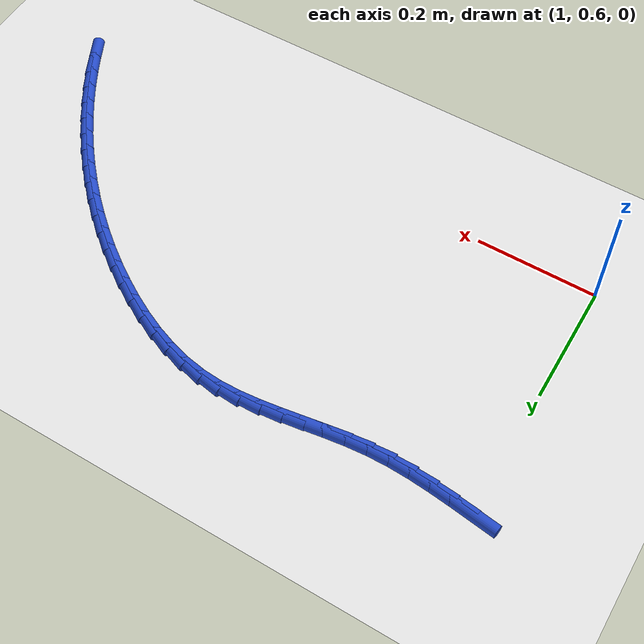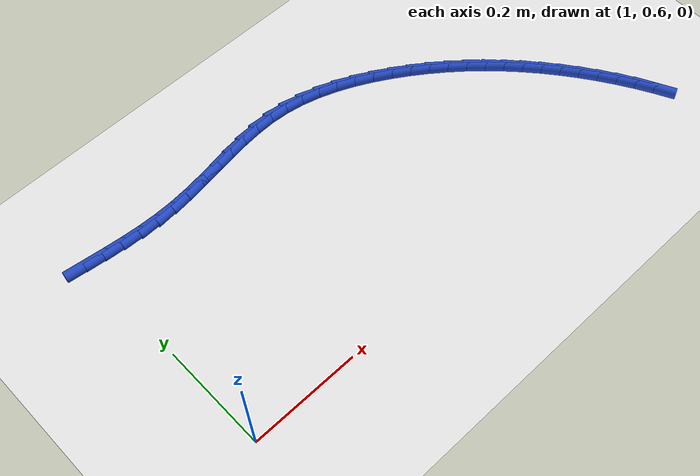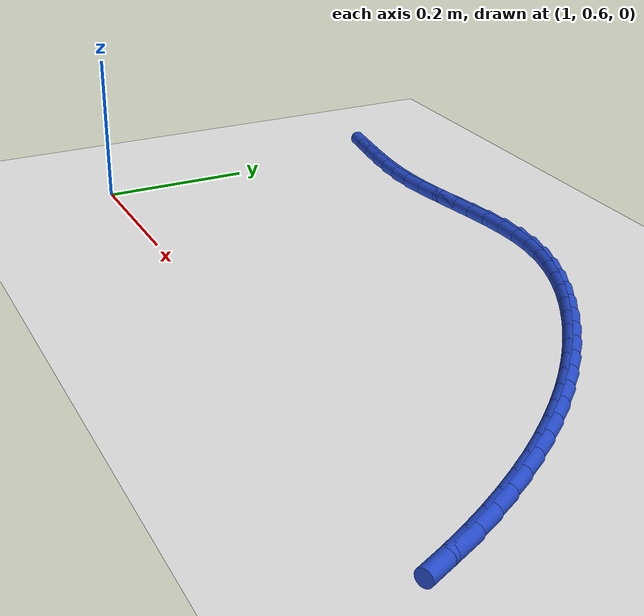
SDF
<sdf version="1.6">
 <world name="default">
  <model name="ground_plane">
   <static>1</static>
   <link name="link">
    <collision name="collision">
     <geometry><plane><normal>0 0 1</normal><size>100 100</size></plane></geometry>
     <surface><friction><ode><mu>100</mu><mu2>50</mu2></ode></friction></surface>
    </collision>
    <visual name="visual">
     <cast_shadows>0</cast_shadows>
     <geometry><plane><normal>0 0 1</normal><size>100 100</size></plane></geometry>
     <material>
      <script><uri>file://media/materials/scripts/gazebo.material</uri><name>Gazebo/WhiteGlow</name></script>
     </material>
    </visual>
   </link>
  </model>
  <model name="line">
   <link name="link_48">
    <pose>0.997344212812623 1.017504836255232 0.01 0 1.57 -0.13120372640908792</pose>
    <collision name="collision">
     <geometry><cylinder><radius>0.01</radius><length>0.08</length></cylinder></geometry>
    </collision>
    <visual name="visual">
     <material>
      <script><name>Gazebo/Blue</name><uri>file://media/materials/scripts/gazebo.material</uri></script>
     </material>
     <geometry><cylinder><radius>0.01</radius><length>0.08</length></cylinder></geometry>
    </visual>
   </link>
   <link name="link_49">
    <pose>1.031423012908123 1.0130077360406309 0.01 0 1.57 -0.11436461070944176</pose>
    <collision name="collision">
     <geometry><cylinder><radius>0.01</radius><length>0.08</length></cylinder></geometry>
    </collision>
    <visual name="visual">
     <material>
      <script><name>Gazebo/Blue</name><uri>file://media/materials/scripts/gazebo.material</uri></script>
     </material>
     <geometry><cylinder><radius>0.01</radius><length>0.08</length></cylinder></geometry>
    </visual>
   </link>
   <link name="link_50">
    <pose>1.0655704630859228 1.009085360670285 0.01 0 1.57 -0.08363959659428066</pose>
    <collision name="collision">
     <geometry><cylinder><radius>0.01</radius><length>0.08</length></cylinder></geometry>
    </collision>
    <visual name="visual">
     <material>
      <script><name>Gazebo/Blue</name><uri>file://media/materials/scripts/gazebo.material</uri></script>
     </material>
     <geometry><cylinder><radius>0.01</radius><length>0.08</length></cylinder></geometry>
    </visual>
   </link>
   <link name="link_51">
    <pose>1.0997574343150065 1.0062192897908666 0.01 0 1.57 -0.0388193527741868</pose>
    <collision name="collision">
     <geometry><cylinder><radius>0.01</radius><length>0.08</length></cylinder></geometry>
    </collision>
    <visual name="visual">
     <material>
      <script><name>Gazebo/Blue</name><uri>file://media/materials/scripts/gazebo.material</uri></script>
     </material>
     <geometry><cylinder><radius>0.01</radius><length>0.08</length></cylinder></geometry>
    </visual>
   </link>
   <link name="link_52">
    <pose>1.1339547975643576 1.0048911030490466 0.01 0 1.57 0.020213358716206664</pose>
    <collision name="collision">
     <geometry><cylinder><radius>0.01</radius><length>0.08</length></cylinder></geometry>
    </collision>
    <visual name="visual">
     <material>
      <script><name>Gazebo/Blue</name><uri>file://media/materials/scripts/gazebo.material</uri></script>
     </material>
     <geometry><cylinder><radius>0.01</radius><length>0.08</length></cylinder></geometry>
    </visual>
   </link>
   <link name="link_53">
    <pose>1.1681334258048288 1.0055820620286393 0.01 0 1.57 0.08481698721427056</pose>
    <collision name="collision">
     <geometry><cylinder><radius>0.01</radius><length>0.08</length></cylinder></geometry>
    </collision>
    <visual name="visual">
     <material>
      <script><name>Gazebo/Blue</name><uri>file://media/materials/scripts/gazebo.material</uri></script>
     </material>
     <geometry><cylinder><radius>0.01</radius><length>0.08</length></cylinder></geometry>
    </visual>
   </link>
   <link name="link_54">
    <pose>1.202266013352895 1.0084840474950658 0.01 0 1.57 0.13081095137444468</pose>
    <collision name="collision">
     <geometry><cylinder><radius>0.01</radius><length>0.08</length></cylinder></geometry>
    </collision>
    <visual name="visual">
     <material>
      <script><name>Gazebo/Blue</name><uri>file://media/materials/scripts/gazebo.material</uri></script>
     </material>
     <geometry><cylinder><radius>0.01</radius><length>0.08</length></cylinder></geometry>
    </visual>
   </link>
   <link name="link_55">
    <pose>1.2363304363367107 1.0129656385376251 0.01 0 1.57 0.15429955857101207</pose>
    <collision name="collision">
     <geometry><cylinder><radius>0.01</radius><length>0.08</length></cylinder></geometry>
    </collision>
    <visual name="visual">
     <material>
      <script><name>Gazebo/Blue</name><uri>file://media/materials/scripts/gazebo.material</uri></script>
     </material>
     <geometry><cylinder><radius>0.01</radius><length>0.08</length></cylinder></geometry>
    </visual>
   </link>
   <link name="link_56">
    <pose>1.2703054862540362 1.018249977595118 0.01 0 1.57 0.15554168414504255</pose>
    <collision name="collision">
     <geometry><cylinder><radius>0.01</radius><length>0.08</length></cylinder></geometry>
    </collision>
    <visual name="visual">
     <material>
      <script><name>Gazebo/Blue</name><uri>file://media/materials/scripts/gazebo.material</uri></script>
     </material>
     <geometry><cylinder><radius>0.01</radius><length>0.08</length></cylinder></geometry>
    </visual>
   </link>
   <link name="link_57">
    <pose>1.3041699546026353 1.0235602071063477 0.01 0 1.57 0.1343445101931664</pose>
    <collision name="collision">
     <geometry><cylinder><radius>0.01</radius><length>0.08</length></cylinder></geometry>
    </collision>
    <visual name="visual">
     <material>
      <script><name>Gazebo/Blue</name><uri>file://media/materials/scripts/gazebo.material</uri></script>
     </material>
     <geometry><cylinder><radius>0.01</radius><length>0.08</length></cylinder></geometry>
    </visual>
   </link>
   <link name="link_58">
    <pose>1.3379026328802706 1.0281194695101155 0.01 0 1.57 0.09003190756228516</pose>
    <collision name="collision">
     <geometry><cylinder><radius>0.01</radius><length>0.08</length></cylinder></geometry>
    </collision>
    <visual name="visual">
     <material>
      <script><name>Gazebo/Blue</name><uri>file://media/materials/scripts/gazebo.material</uri></script>
     </material>
     <geometry><cylinder><radius>0.01</radius><length>0.08</length></cylinder></geometry>
    </visual>
   </link>
   <link name="link_59">
    <pose>1.3714823125847047 1.031150907245224 0.01 0 1.57 0.02175215081615469</pose>
    <collision name="collision">
     <geometry><cylinder><radius>0.01</radius><length>0.08</length></cylinder></geometry>
    </collision>
    <visual name="visual">
     <material>
      <script><name>Gazebo/Blue</name><uri>file://media/materials/scripts/gazebo.material</uri></script>
     </material>
     <geometry><cylinder><radius>0.01</radius><length>0.08</length></cylinder></geometry>
    </visual>
   </link>
   <link name="link_60">
    <pose>1.4048877852137003 1.0318776627504758 0.01 0 1.57 -0.0706780919763702</pose>
    <collision name="collision">
     <geometry><cylinder><radius>0.01</radius><length>0.08</length></cylinder></geometry>
    </collision>
    <visual name="visual">
     <material>
      <script><name>Gazebo/Blue</name><uri>file://media/materials/scripts/gazebo.material</uri></script>
     </material>
     <geometry><cylinder><radius>0.01</radius><length>0.08</length></cylinder></geometry>
    </visual>
   </link>
   <link name="link_61">
    <pose>1.438097530410926 1.0295265451018887 0.01 0 1.57 -0.1748310320683953</pose>
    <collision name="collision">
     <geometry><cylinder><radius>0.01</radius><length>0.08</length></cylinder></geometry>
    </collision>
    <visual name="visual">
     <material>
      <script><name>Gazebo/Blue</name><uri>file://media/materials/scripts/gazebo.material</uri></script>
     </material>
     <geometry><cylinder><radius>0.01</radius><length>0.08</length></cylinder></geometry>
    </visual>
   </link>
   <link name="link_62">
    <pose>1.4710576838354428 1.0237046490926218 0.01 0 1.57 -0.26878809851710617</pose>
    <collision name="collision">
     <geometry><cylinder><radius>0.01</radius><length>0.08</length></cylinder></geometry>
    </collision>
    <visual name="visual">
     <material>
      <script><name>Gazebo/Blue</name><uri>file://media/materials/scripts/gazebo.material</uri></script>
     </material>
     <geometry><cylinder><radius>0.01</radius><length>0.08</length></cylinder></geometry>
    </visual>
   </link>
   <link name="link_63">
    <pose>1.5036542730209062 1.0147257932498852 0.01 0 1.57 -0.35063442356578867</pose>
    <collision name="collision">
     <geometry><cylinder><radius>0.01</radius><length>0.08</length></cylinder></geometry>
    </collision>
    <visual name="visual">
     <material>
      <script><name>Gazebo/Blue</name><uri>file://media/materials/scripts/gazebo.material</uri></script>
     </material>
     <geometry><cylinder><radius>0.01</radius><length>0.08</length></cylinder></geometry>
    </visual>
   </link>
   <link name="link_64">
    <pose>1.5357667830568489 1.0029807191542888 0.01 0 1.57 -0.4213217533757041</pose>
    <collision name="collision">
     <geometry><cylinder><radius>0.01</radius><length>0.08</length></cylinder></geometry>
    </collision>
    <visual name="visual">
     <material>
      <script><name>Gazebo/Blue</name><uri>file://media/materials/scripts/gazebo.material</uri></script>
     </material>
     <geometry><cylinder><radius>0.01</radius><length>0.08</length></cylinder></geometry>
    </visual>
   </link>
   <link name="link_65">
    <pose>1.5672746990328021 0.9888601683864421 0.01 0 1.57 -0.48202777366266325</pose>
    <collision name="collision">
     <geometry><cylinder><radius>0.01</radius><length>0.08</length></cylinder></geometry>
    </collision>
    <visual name="visual">
     <material>
      <script><name>Gazebo/Blue</name><uri>file://media/materials/scripts/gazebo.material</uri></script>
     </material>
     <geometry><cylinder><radius>0.01</radius><length>0.08</length></cylinder></geometry>
    </visual>
   </link>
   <link name="link_66">
    <pose>1.5980575060382998 0.9727548825269556 0.01 0 1.57 -0.5339340986630283</pose>
    <collision name="collision">
     <geometry><cylinder><radius>0.01</radius><length>0.08</length></cylinder></geometry>
    </collision>
    <visual name="visual">
     <material>
      <script><name>Gazebo/Blue</name><uri>file://media/materials/scripts/gazebo.material</uri></script>
     </material>
     <geometry><cylinder><radius>0.01</radius><length>0.08</length></cylinder></geometry>
    </visual>
   </link>
   <link name="link_67">
    <pose>1.6279946891628727 0.955055603156439 0.01 0 1.57 -0.5788261377598799</pose>
    <collision name="collision">
     <geometry><cylinder><radius>0.01</radius><length>0.08</length></cylinder></geometry>
    </collision>
    <visual name="visual">
     <material>
      <script><name>Gazebo/Blue</name><uri>file://media/materials/scripts/gazebo.material</uri></script>
     </material>
     <geometry><cylinder><radius>0.01</radius><length>0.08</length></cylinder></geometry>
    </visual>
   </link>
   <link name="link_68">
    <pose>1.656979142903108 0.9361144945198969 0.01 0 1.57 -0.6215607652828136</pose>
    <collision name="collision">
     <geometry><cylinder><radius>0.01</radius><length>0.08</length></cylinder></geometry>
    </collision>
    <visual name="visual">
     <material>
      <script><name>Gazebo/Blue</name><uri>file://media/materials/scripts/gazebo.material</uri></script>
     </material>
     <geometry><cylinder><radius>0.01</radius><length>0.08</length></cylinder></geometry>
    </visual>
   </link>
   <link name="link_69">
    <pose>1.6849827824959516 0.9160563871996104 0.01 0 1.57 -0.6636873785567908</pose>
    <collision name="collision">
     <geometry><cylinder><radius>0.01</radius><length>0.08</length></cylinder></geometry>
    </collision>
    <visual name="visual">
     <material>
      <script><name>Gazebo/Blue</name><uri>file://media/materials/scripts/gazebo.material</uri></script>
     </material>
     <geometry><cylinder><radius>0.01</radius><length>0.08</length></cylinder></geometry>
    </visual>
   </link>
   <link name="link_70">
    <pose>1.7120063702527462 0.8949231220329945 0.01 0 1.57 -0.7051404682241248</pose>
    <collision name="collision">
     <geometry><cylinder><radius>0.01</radius><length>0.08</length></cylinder></geometry>
    </collision>
    <visual name="visual">
     <material>
      <script><name>Gazebo/Blue</name><uri>file://media/materials/scripts/gazebo.material</uri></script>
     </material>
     <geometry><cylinder><radius>0.01</radius><length>0.08</length></cylinder></geometry>
    </visual>
   </link>
   <link name="link_71">
    <pose>1.7380507108355725 0.8727564180192129 0.01 0 1.57 -0.7458645775239934</pose>
    <collision name="collision">
     <geometry><cylinder><radius>0.01</radius><length>0.08</length></cylinder></geometry>
    </collision>
    <visual name="visual">
     <material>
      <script><name>Gazebo/Blue</name><uri>file://media/materials/scripts/gazebo.material</uri></script>
     </material>
     <geometry><cylinder><radius>0.01</radius><length>0.08</length></cylinder></geometry>
    </visual>
   </link>
   <link name="link_72">
    <pose>1.7631166089065142 0.8495979941574295 0.01 0 1.57 -0.7858165425522354</pose>
    <collision name="collision">
     <geometry><cylinder><radius>0.01</radius><length>0.08</length></cylinder></geometry>
    </collision>
    <visual name="visual">
     <material>
      <script><name>Gazebo/Blue</name><uri>file://media/materials/scripts/gazebo.material</uri></script>
     </material>
     <geometry><cylinder><radius>0.01</radius><length>0.08</length></cylinder></geometry>
    </visual>
   </link>
   <link name="link_73">
    <pose>1.7872048691276536 0.8254895694468083 0.01 0 1.57 -0.8249651487157852</pose>
    <collision name="collision">
     <geometry><cylinder><radius>0.01</radius><length>0.08</length></cylinder></geometry>
    </collision>
    <visual name="visual">
     <material>
      <script><name>Gazebo/Blue</name><uri>file://media/materials/scripts/gazebo.material</uri></script>
     </material>
     <geometry><cylinder><radius>0.01</radius><length>0.08</length></cylinder></geometry>
    </visual>
   </link>
   <link name="link_74">
    <pose>1.8103162961610721 0.8004728628865129 0.01 0 1.57 -0.8632905389196548</pose>
    <collision name="collision">
     <geometry><cylinder><radius>0.01</radius><length>0.08</length></cylinder></geometry>
    </collision>
    <visual name="visual">
     <material>
      <script><name>Gazebo/Blue</name><uri>file://media/materials/scripts/gazebo.material</uri></script>
     </material>
     <geometry><cylinder><radius>0.01</radius><length>0.08</length></cylinder></geometry>
    </visual>
   </link>
   <link name="link_75">
    <pose>1.8324516946688532 0.7745895934757073 0.01 0 1.57 -0.9007834355394135</pose>
    <collision name="collision">
     <geometry><cylinder><radius>0.01</radius><length>0.08</length></cylinder></geometry>
    </collision>
    <visual name="visual">
     <material>
      <script><name>Gazebo/Blue</name><uri>file://media/materials/scripts/gazebo.material</uri></script>
     </material>
     <geometry><cylinder><radius>0.01</radius><length>0.08</length></cylinder></geometry>
    </visual>
   </link>
   <link name="link_76">
    <pose>1.853611869313078 0.7478814802135553 0.01 0 1.57 -0.9374442364813387</pose>
    <collision name="collision">
     <geometry><cylinder><radius>0.01</radius><length>0.08</length></cylinder></geometry>
    </collision>
    <visual name="visual">
     <material>
      <script><name>Gazebo/Blue</name><uri>file://media/materials/scripts/gazebo.material</uri></script>
     </material>
     <geometry><cylinder><radius>0.01</radius><length>0.08</length></cylinder></geometry>
    </visual>
   </link>
   <link name="link_77">
    <pose>1.8737976247558294 0.7203902420992208 0.01 0 1.57 -0.9732820403305039</pose>
    <collision name="collision">
     <geometry><cylinder><radius>0.01</radius><length>0.08</length></cylinder></geometry>
    </collision>
    <visual name="visual">
     <material>
      <script><name>Gazebo/Blue</name><uri>file://media/materials/scripts/gazebo.material</uri></script>
     </material>
     <geometry><cylinder><radius>0.01</radius><length>0.08</length></cylinder></geometry>
    </visual>
   </link>
   <link name="link_78">
    <pose>1.8930097656591895 0.6921575981318676 0.01 0 1.57 -1.0083814099799056</pose>
    <collision name="collision">
     <geometry><cylinder><radius>0.01</radius><length>0.08</length></cylinder></geometry>
    </collision>
    <visual name="visual">
     <material>
      <script><name>Gazebo/Blue</name><uri>file://media/materials/scripts/gazebo.material</uri></script>
     </material>
     <geometry><cylinder><radius>0.01</radius><length>0.08</length></cylinder></geometry>
    </visual>
   </link>
   <link name="link_79">
    <pose>1.9112463302777145 0.6632253099301828 0.01 0 1.57 -1.043470364892043</pose>
    <collision name="collision">
     <geometry><cylinder><radius>0.01</radius><length>0.08</length></cylinder></geometry>
    </collision>
    <visual name="visual">
     <material>
      <script><name>Gazebo/Blue</name><uri>file://media/materials/scripts/gazebo.material</uri></script>
     </material>
     <geometry><cylinder><radius>0.01</radius><length>0.08</length></cylinder></geometry>
    </visual>
   </link>
   <link name="link_80">
    <pose>1.928477340594474 0.6336355707340497 0.01 0 1.57 -1.079036549144892</pose>
    <collision name="collision">
     <geometry><cylinder><radius>0.01</radius><length>0.08</length></cylinder></geometry>
    </collision>
    <visual name="visual">
     <material>
      <script><name>Gazebo/Blue</name><uri>file://media/materials/scripts/gazebo.material</uri></script>
     </material>
     <geometry><cylinder><radius>0.01</radius><length>0.08</length></cylinder></geometry>
    </visual>
   </link>
   <link name="link_81">
    <pose>1.9446565343420408 0.6034308246599797 0.01 0 1.57 -1.1151797856887617</pose>
    <collision name="collision">
     <geometry><cylinder><radius>0.01</radius><length>0.08</length></cylinder></geometry>
    </collision>
    <visual name="visual">
     <material>
      <script><name>Gazebo/Blue</name><uri>file://media/materials/scripts/gazebo.material</uri></script>
     </material>
     <geometry><cylinder><radius>0.01</radius><length>0.08</length></cylinder></geometry>
    </visual>
   </link>
  </model>
 </world>
</sdf>
